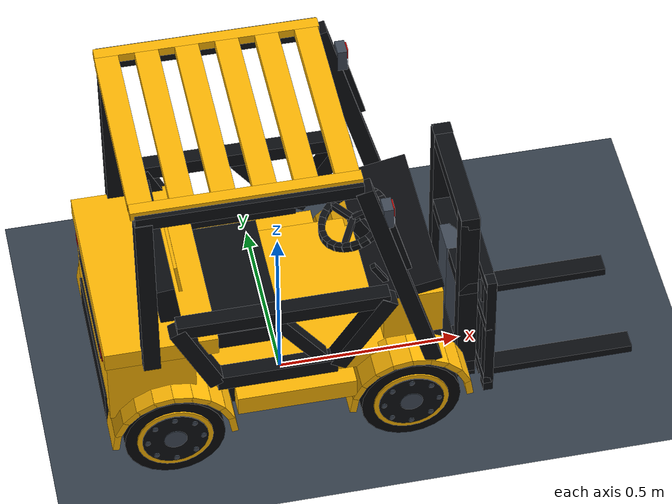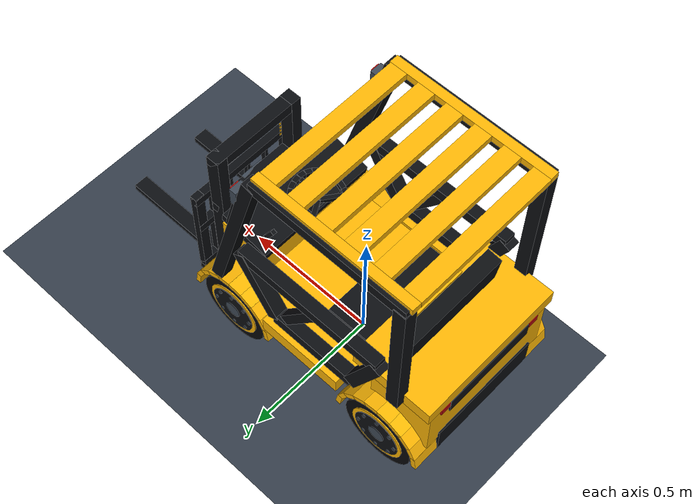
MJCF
<?xml version="1.0"?>
<mujoco model="dls08_model_check_scene">
  <include file="forklift.xml" />
  <asset>
    <texture name="sky" type="skybox" builtin="gradient" rgb1=".14 .19 .25" rgb2=".38 .43 .49" width="512" height="3072" />
    <texture name="floor_pattern" type="2d" builtin="checker" rgb1=".19 .23 .28" rgb2=".22 .26 .31" width="512" height="512" />
    <material name="floor_material" texture="floor_pattern" texrepeat="6 6" reflectance=".08" />
  </asset>
  <worldbody>
    <light name="key_light" pos="1 -2 3" dir="-1 2 -3" diffuse=".85 .85 .85" castshadow="true" />
    <light name="fill_light" pos="-2 1 2" dir="2 -1 -2" diffuse=".5 .5 .5" castshadow="false" />
    <geom name="ground" type="plane" size="4 4 .1" material="floor_material" contype="2" conaffinity="1" />
  </worldbody>
</mujoco>
